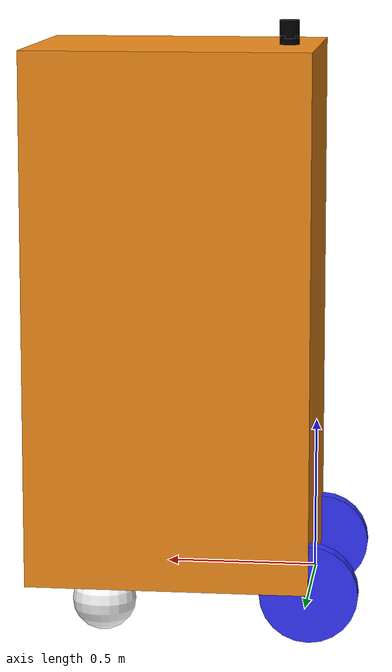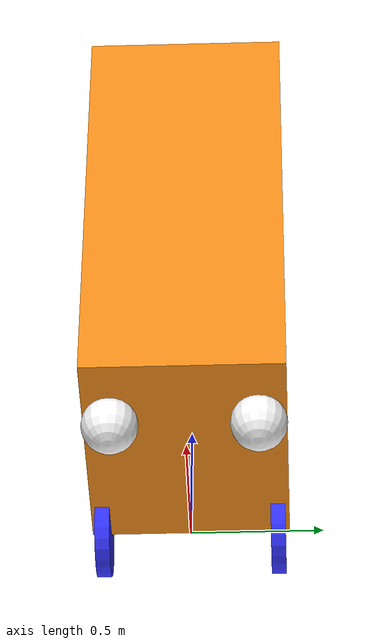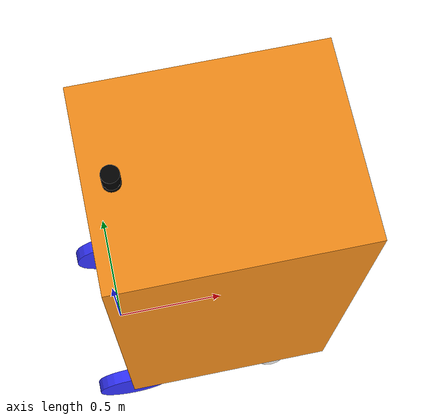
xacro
<?xml version="1.0"?>
<robot xmlns:xacro="http://www.ros.org/wiki/xacro"  name="robot">

    <xacro:arg name="use_ros2_control" default="true"/>
    <xacro:arg name="sim_mode" default="true"/>

    <xacro:include filename="robot_core.xacro" />
    <xacro:include filename="lidar.xacro" />

    <xacro:if value="$(arg use_ros2_control)">
        <xacro:include filename="ros2_control.xacro" />
    </xacro:if>
    <xacro:unless value="$(arg use_ros2_control)">
        <xacro:include filename="gazebo_control.xacro" />
    </xacro:unless>

</robot>

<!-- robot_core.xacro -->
<robot xmlns:xacro="http://www.ros.org/wiki/xacro" >

    <xacro:include filename="inertial_macros.xacro"/>

    <xacro:property name="chassis_length" value="0.93"/>
    <xacro:property name="chassis_width" value="0.745"/>
    <xacro:property name="chassis_height" value="1.75"/>
    <xacro:property name="chassis_mass" value="68.039"/>
    <xacro:property name="wheel_radius" value=".161"/>
    <xacro:property name="wheel_thickness" value="0.055"/>
    <xacro:property name="wheel_mass" value=".725"/>
    <xacro:property name="wheel_offset_x" value="0.0"/>
    <xacro:property name="wheel_offset_y" value="0.33"/>
    <xacro:property name="wheel_offset_z" value="0.0"/>
    <xacro:property name="caster_radius" value="0.105"/>
    <xacro:property name="caster_mass" value="1.1"/>
    <xacro:property name="caster_thickness" value=".058"/>
    <xacro:property name="caster_offset_x" value="0.68"/>
    <xacro:property name="caster_offset_z" value="${wheel_offset_z - wheel_radius + caster_radius}"/>
    <xacro:property name="caster_offset_y" value="0.27"/>

    <material name="white">
        <color rgba="1 1 1 1" />
    </material>

    <material name="orange">
        <color rgba="1 0.3 0.1 1"/>
    </material>

    <material name="blue">
        <color rgba="0.2 0.2 1 1"/>
    </material>

    <material name="black">
        <color rgba="0 0 0 1"/>
    </material>

    <material name="red">
        <color rgba="1 0 0 1"/>
    </material>

    <!-- BASE LINK -->

    <link name="base_link">

    </link>

    <!-- BASE_FOOTPRINT LINK -->

    <joint name="base_footprint_joint" type="fixed">
        <parent link="base_link"/>
        <child link="base_footprint"/>
        <origin xyz="0 0 0" rpy="0 0 0"/>
    </joint>

    <link name="base_footprint">
    </link>

    <!-- CHASSIS LINK -->

    <joint name="chassis_joint" type="fixed">
        <parent link="base_link"/>
        <child link="chassis"/>
        <origin xyz="${-wheel_offset_x} 0 ${-wheel_offset_z}"/>
    </joint>

    <link name="chassis">
        <visual>
            <origin xyz="${chassis_length/2} 0 ${chassis_height/2}"/>
            <geometry>
                <box size="${chassis_length} ${chassis_width} ${chassis_height}"/>
            </geometry>
            <material name="Orange"/>
        </visual>
        <collision>
            <origin xyz="${chassis_length/2} 0 ${chassis_height/2}"/>
            <geometry>
                <box size="${chassis_length} ${chassis_width} ${chassis_height}"/>
            </geometry>
        </collision>
        <xacro:inertial_box mass="${chassis_mass}" x="${chassis_length}" y="${chassis_width}" z="${chassis_height}">
            <origin xyz="${chassis_length/2} 0 ${chassis_height/2}" rpy="0 0 0"/>
        </xacro:inertial_box>
    </link>

    <gazebo reference="chassis">
        <material>Gazebo/Orange</material>
    </gazebo>

    <!-- LEFT WHEEL LINK -->

    <joint name="left_wheel_joint" type="continuous">
        <parent link="base_link"/>
        <child link="left_wheel"/>
        <origin xyz="0 ${wheel_offset_y} 0" rpy="-${pi/2} 0 0" />
        <axis xyz="0 0 1"/>
    </joint>

    <link name="left_wheel">
        <visual>
            <geometry>
                <cylinder radius="${wheel_radius}" length="${wheel_thickness}"/>
            </geometry>
            <material name="blue"/>
        </visual>
        <collision>
            <geometry>
                <sphere radius="${wheel_radius}"/>
            </geometry>
        </collision>
        <xacro:inertial_cylinder mass="${wheel_mass}" length="${wheel_thickness}" radius="${wheel_radius}">
            <origin xyz="0 0 0" rpy="0 0 0"/>
        </xacro:inertial_cylinder>
    </link>

    <gazebo reference="left_wheel">
        <material>Gazebo/Blue</material>
    </gazebo>

    <!-- RIGHT WHEEL LINK -->

    <joint name="right_wheel_joint" type="continuous">
        <parent link="base_link"/>
        <child link="right_wheel"/>
        <origin xyz="0 ${-wheel_offset_y} 0" rpy="${pi/2} 0 0" />
        <axis xyz="0 0 -1"/>
    </joint>

    <link name="right_wheel">
        <visual>
            <geometry>
                <cylinder radius="${wheel_radius}" length="${wheel_thickness}"/>
            </geometry>
            <material name="blue"/>
        </visual>
        <collision>
            <geometry>
                <sphere radius="${wheel_radius}"/>
            </geometry>
        </collision>
        <xacro:inertial_cylinder mass="${wheel_mass}" length="${wheel_thickness}" radius="${wheel_radius}">
            <origin xyz="0 0 0" rpy="0 0 0"/>
        </xacro:inertial_cylinder>
    </link>

    <gazebo reference="right_wheel">
        <material>Gazebo/Blue</material>
    </gazebo>

    <!-- TWO CASTER WHEELS -->

    <!-- LEFT CASTER LINK -->

    <joint name="left_caster_joint" type="fixed">
        <parent link="base_link"/>
        <child link="left_caster"/>
        <origin xyz="${caster_offset_x} ${caster_offset_y} ${caster_offset_z}"/>
    </joint>

    <link name="left_caster">
        <visual>
            <geometry>
                <sphere radius="${caster_radius}"/>
            </geometry>
            <material name="white"/>
        </visual>
        <collision>
            <geometry>
                <sphere radius="${caster_radius}"/>
            </geometry>
        </collision>
        <xacro:inertial_sphere mass="${caster_mass}" radius="${caster_radius}">
            <origin xyz="0 0 0" rpy="0 0 0"/>
        </xacro:inertial_sphere>
    </link>

    <gazebo reference="left_caster">
        <material>Gazebo/White</material>
        <mu1 value="0.001"/>
        <mu2 value="0.001"/>
    </gazebo>

    <!-- RIGHT CASTER LINK -->

    <joint name="right_caster_joint" type="fixed">
        <parent link="base_link"/>
        <child link="right_caster"/>
        <origin xyz="${caster_offset_x} ${-caster_offset_y} ${caster_offset_z}"/>
    </joint>

    <link name="right_caster">
        <visual>
            <geometry>
                <sphere radius="${caster_radius}"/>
            </geometry>
            <material name="white"/>
        </visual>
        <collision>
            <geometry>
                <sphere radius="${caster_radius}"/>
            </geometry>
        </collision>
        <xacro:inertial_sphere mass="${caster_mass}" radius="${caster_radius}">
            <origin xyz="0 0 0" rpy="0 0 0"/>
        </xacro:inertial_sphere>
    </link>

    <gazebo reference="right_caster">
        <material>Gazebo/White</material>
        <mu1 value="0.001"/>
        <mu2 value="0.001"/>
    </gazebo>

</robot>

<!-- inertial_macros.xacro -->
<robot xmlns:xacro="http://www.ros.org/wiki/xacro" >

    <!-- Specify some standard inertial calculations https://en.wikipedia.org/wiki/List_of_moments_of_inertia -->
    <!-- These make use of xacro's mathematical functionality -->

    <xacro:macro name="inertial_sphere" params="mass radius *origin">
        <inertial>
            <xacro:insert_block name="origin"/>
            <mass value="${mass}" />
            <inertia ixx="${(2/5) * mass * (radius*radius)}" ixy="0.0" ixz="0.0"
                    iyy="${(2/5) * mass * (radius*radius)}" iyz="0.0"
                    izz="${(2/5) * mass * (radius*radius)}" />
        </inertial>
    </xacro:macro>

    <xacro:macro name="inertial_box" params="mass x y z *origin">
        <inertial>
            <xacro:insert_block name="origin"/>
            <mass value="${mass}" />
            <inertia ixx="${(1/12) * mass * (y*y+z*z)}" ixy="0.0" ixz="0.0"
                    iyy="${(1/12) * mass * (x*x+z*z)}" iyz="0.0"
                    izz="${(1/12) * mass * (x*x+y*y)}" />
        </inertial>
    </xacro:macro>

    <!-- CYLINDER INERTIA: Modeled for motorized wheels with calculated reflected inertia. Called in robot_core.xacro -->
    <xacro:macro name="inertial_cylinder" params="mass length radius *origin">
        <inertial>
            <xacro:insert_block name="origin"/>
            <mass value="${mass}" />
            <inertia ixx="${(1/12) * mass * (3*radius*radius + length*length)}" ixy="0.0" ixz="0.0"
                    iyy="${(1/12) * mass * (3*radius*radius + length*length)}" iyz="0.0"
                    izz="${(mass/2.0) * (radius*radius)}" />  <!--articubot for old-->
        </inertial>
    </xacro:macro>

</robot>

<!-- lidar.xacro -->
<robot xmlns:xacro="http://www.ros.org/wiki/xacro" >

    <joint name="laser_joint" type="fixed">
        <parent link="chassis"/>
        <child link="laser_frame"/>
        <origin xyz="0.1 0 1.8 " rpy="0 0 0"/> <!-- 1.8m is the height of the lidar from the ground -->
    </joint>

    <link name="laser_frame">
        <visual>
            <geometry>
                <cylinder radius="0.0325" length="0.06"/>
            </geometry>
            <material name="black"/>
        </visual>
        <visual>
            <origin xyz="0 0 -0.05"/>
            <geometry>
                <cylinder radius="0.0325" length="0.06"/>
            </geometry>
            <material name="black"/>
        </visual>
        <collision>
            <geometry>
                <cylinder radius="0.0325" length="0.06"/>
            </geometry>
        </collision>
        <xacro:inertial_cylinder mass="0.1" length="0.06" radius="0.0325">
            <origin xyz="0 0 0" rpy="0 0 0"/>
        </xacro:inertial_cylinder>
    </link>

    <gazebo reference="laser_frame">
        <material>Gazebo/Black</material>

        <sensor name="laser" type="gpu_lidar">
            <pose> 0 0 0 0 0 0 </pose>
            <visualize>false</visualize>
            <update_rate>10</update_rate> <!-- 10 Hz -->
            <gpu_lidar>
                <scan>
                    <horizontal>
                        <samples>360</samples>
                        <min_angle>-0.0976</min_angle> <!-- -52 degrees -->
                        <max_angle>0.1222</max_angle> <!-- 7 degrees -->
                    </horizontal>
                </scan>
                <range>
                    <min>0.1</min>
                    <max>20</max>
                </range>
            </gpu_lidar>
        </sensor>
    </gazebo>

</robot>
